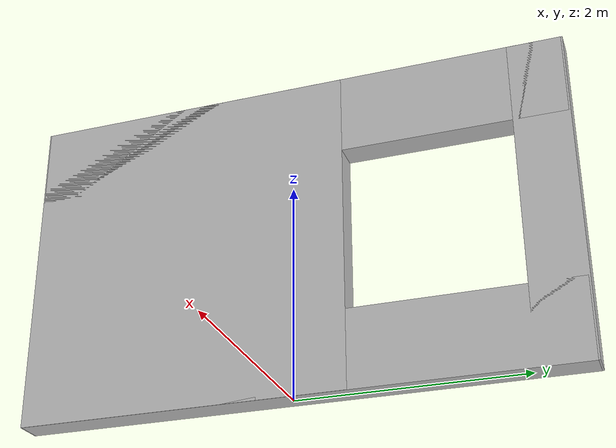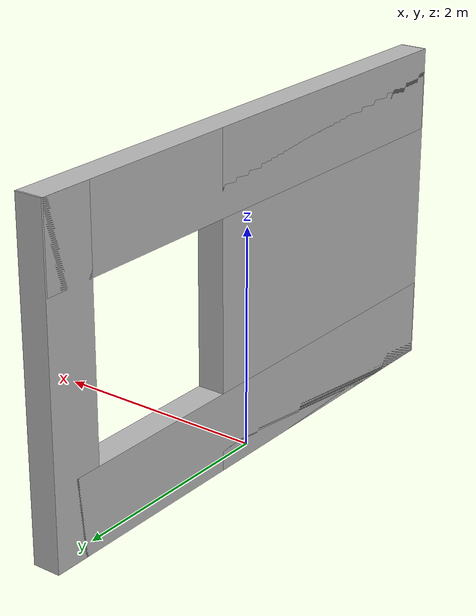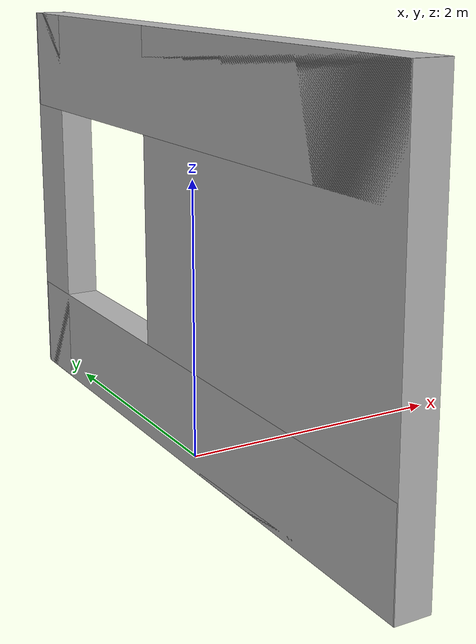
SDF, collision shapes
<sdf version="1.5">
  <model name="wall_with_right_window">
    <link name="wall_with_right_window">
      <visual name="visual">
        <pose>0 0 0 0 0 -1.57</pose>
        <geometry>
          <mesh>
            <uri>wall_with_right_window.obj</uri>
          </mesh>
        </geometry>
      </visual>
      <collision name="collision_Wall.008">
        <pose>0.0 -1.0075517892837524 1.5 0.0 0.0 0.0</pose>
        <geometry>
          <box>
            <size>0.25 3.0044991970062256 3.0</size>
          </box>
        </geometry>
      </collision>
      <collision name="collision_Wall.011">
        <pose>0.0 -0.8953216671943665 0.02500000037252903 0.0 0.0 0.0</pose>
        <geometry>
          <box>
            <size>0.25 1.195443034172058 0.05000000074505806</size>
          </box>
        </geometry>
      </collision>
      <collision name="collision_Wall.018">
        <pose>0.0 0.0 2.625 0.0 0.0 0.0</pose>
        <geometry>
          <box>
            <size>0.25 5.0 0.7505852580070496</size>
          </box>
        </geometry>
      </collision>
      <collision name="collision_Wall.021">
        <pose>0.0 0.0 0.35619157552719116 0.0 0.0 0.0</pose>
        <geometry>
          <box>
            <size>0.25 5.0 0.7154595851898193</size>
          </box>
        </geometry>
      </collision>
      <collision name="collision_Wall.022">
        <pose>0.0 2.269747257232666 1.5 0.0 0.0 0.0</pose>
        <geometry>
          <box>
            <size>0.25 0.49168092012405396 3.0</size>
          </box>
        </geometry>
      </collision>
    </link>
    <frame name="frame_InWindow1.001">
      <pose>0.0 1.25 1.5 0.0 0.0 0.0</pose>
    </frame>
  </model>
</sdf>
